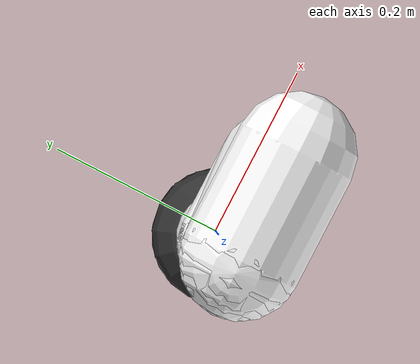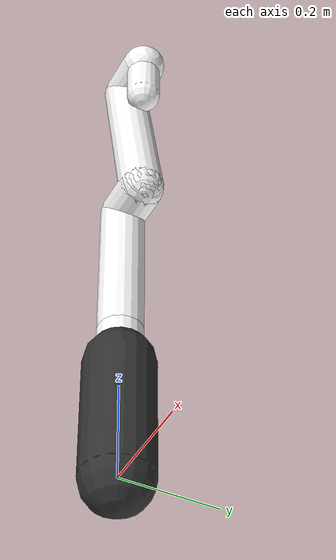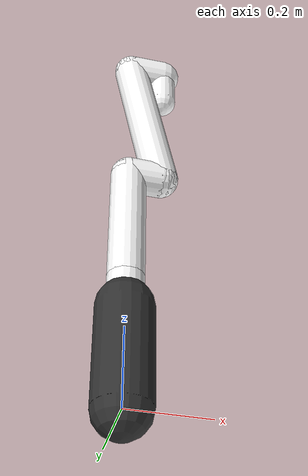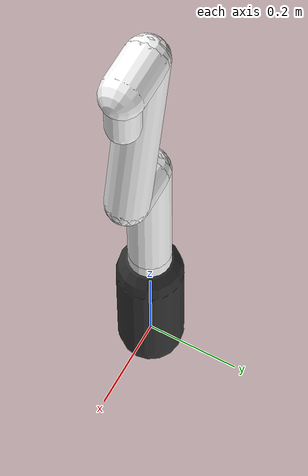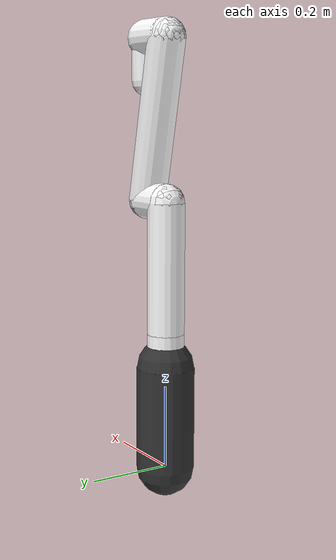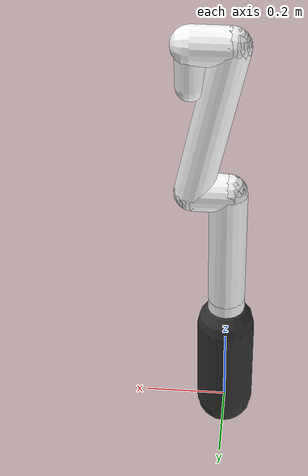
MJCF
<mujoco model="fr3_fallback">
  <compiler angle="radian" />
  <option integrator="implicitfast" />
  <default>
    <default class="fr3">
      <joint damping="0.21" armature="0.195" frictionloss="1.137" />
      <site size="0.001" rgba="0.5 0.5 0.5 0.3" group="4" />
      <geom type="capsule" size="0.04" contype="0" conaffinity="0" group="2" mass="0" density="0" material="white" />
    </default>
  </default>
  <asset>
    <material name="black" rgba=".2 .2 .2 1" />
    <material name="white" rgba="1 1 1 1" />
    <material name="red" rgba="1 0.072272 0.039546 1" />
    <material name="gray" rgba="0.863156 0.863156 0.863157 1" />
    <material name="button_green" rgba="0.102241 0.571125 0.102242 1" />
    <material name="button_red" rgba="0.520996 0.008023 0.013702 1" />
    <material name="button_blue" rgba="0.024157 0.445201 0.737911 1" />
  </asset>
  <worldbody>
    <body name="base" childclass="fr3">
      <body name="fr3_link0">
        <geom fromto="0 0 0 0 0 0.25" size="0.07" material="black" />
        <body name="fr3_link1" pos="0 0 0.333">
          <inertial pos="4.128e-07 -0.0181251 -0.0386036" quat="0.998098 -0.0605364 0.00380499 0.0110109" mass="2.92747" diaginertia="0.0239286 0.0227246 0.00610634" />
          <joint name="fr3_joint1" axis="0 0 1" range="-2.7437 2.7437" actuatorfrcrange="-87 87" />
          <body name="fr3_link2" quat="1 -1 0 0">
            <inertial pos="0.00318289 -0.0743222 0.00881461" quat="0.502599 0.584437 -0.465998 0.434366" mass="2.93554" diaginertia="0.0629567 0.0411924 0.0246371" />
            <joint name="fr3_joint2" axis="0 0 1" range="-1.7837 1.7837" actuatorfrcrange="-87 87" />
            <geom fromto="0 0 0 0 -0.316 0" size="0.045" />
            <body name="fr3_link3" pos="0 -0.316 0" quat="1 1 0 0">
              <inertial pos="0.0407016 -0.00482006 -0.0289731" quat="0.921025 -0.244161 0.155272 0.260745" mass="2.2449" diaginertia="0.0267409 0.0189869 0.0171587" />
              <joint name="fr3_joint3" axis="0 0 1" range="-2.9007 2.9007" actuatorfrcrange="-87 87" />
              <geom fromto="0 0 0 0.0825 0 0" size="0.045" />
              <body name="fr3_link4" pos="0.0825 0 0" quat="1 1 0 0">
                <inertial pos="-0.0459101 0.0630493 -0.00851879" quat="0.438018 0.803311 0.00937812 0.403414" mass="2.6156" diaginertia="0.05139 0.0372717 0.0160047" />
                <joint name="fr3_joint4" axis="0 0 1" range="-3.0421 -0.1518" actuatorfrcrange="-87 87" />
                <geom fromto="0 0 0 -0.0825 0.384 0" size="0.045" />
                <body name="fr3_link5" pos="-0.0825 0.384 0" quat="1 -1 0 0">
                  <inertial pos="-0.00160396 0.0292536 -0.0972966" quat="0.919031 0.125604 0.0751531 -0.366003" mass="2.32712" diaginertia="0.0579335 0.0449144 0.0130634" />
                  <joint name="fr3_joint5" axis="0 0 1" range="-2.8065 2.8065" actuatorfrcrange="-12 12" armature="0.074" frictionloss="0.763" />
                  <body name="fr3_link6" quat="1 1 0 0">
                    <inertial pos="0.0597131 -0.0410295 -0.0101693" quat="0.621301 0.552665 0.510011 0.220081" mass="1.81704" diaginertia="0.0175039 0.0161123 0.00193529" />
                    <joint name="fr3_joint6" axis="0 0 1" range="0.5445 4.5169" actuatorfrcrange="-12 12" armature="0.074" frictionloss="0.44" />
                    <geom fromto="0 0 0 0.088 0 0" size="0.045" />
                    <body name="fr3_link7" pos="0.088 0 0" quat="1 1 0 0">
                      <inertial pos="0.00452258 0.00862619 -0.0161633" quat="0.727579 0.0978688 -0.24906 0.63168" mass="0.627143" diaginertia="0.000223836 0.000223642 5.64132e-07" />
                      <joint name="fr3_joint7" axis="0 0 1" range="-3.0159 3.0159" actuatorfrcrange="-12 12" armature="0.074" frictionloss="0.248" />
                      <geom fromto="0 0 0 0 0 0.1" size="0.035" />
                      <site name="attachment_site" pos="0 0 0.107" />
                    </body>
                  </body>
                </body>
              </body>
            </body>
          </body>
        </body>
        <geom fromto="0 0 0 0 0 0.333" size="0.045" />
      </body>
    </body>
  </worldbody>
  <contact>
    <exclude body1="fr3_link0" body2="fr3_link1" />
  </contact>
  <keyframe>
    <key name="home" qpos="0 0 0 -1.57079 0 1.57079 -0.7853" />
  </keyframe>
</mujoco>
